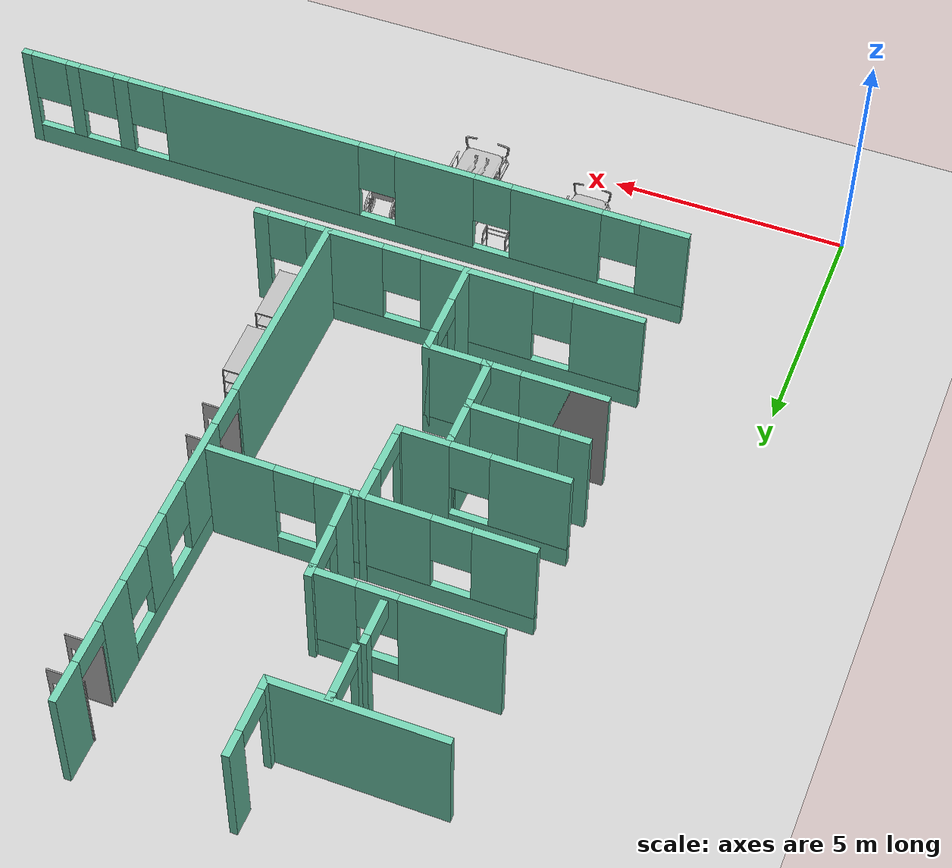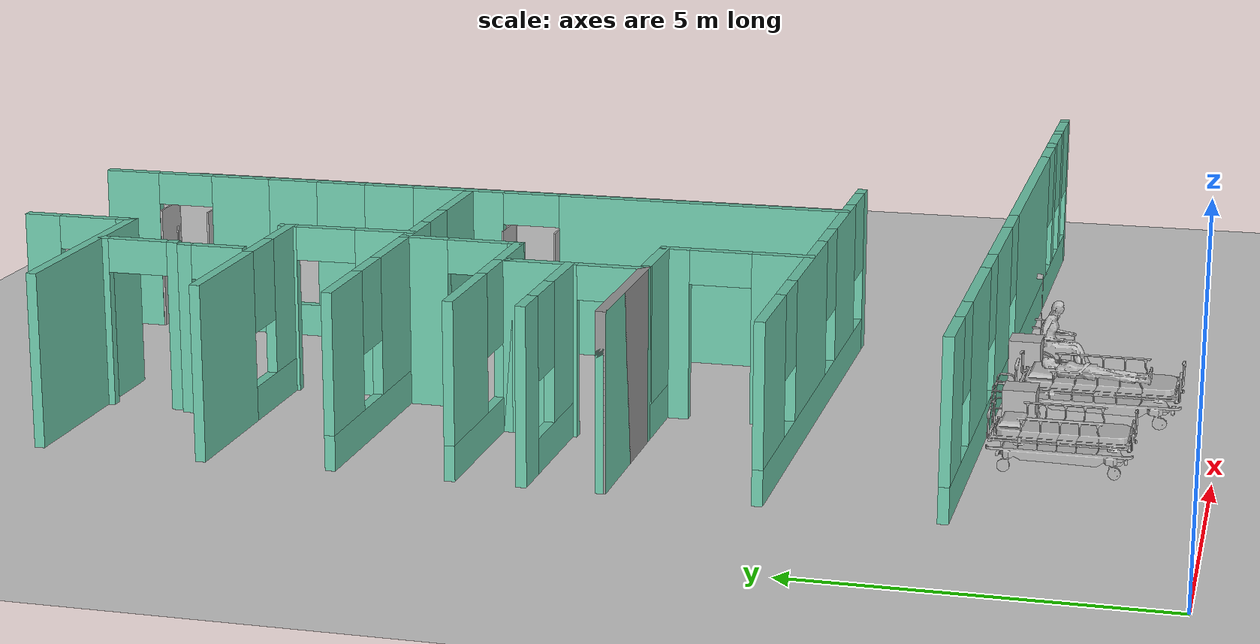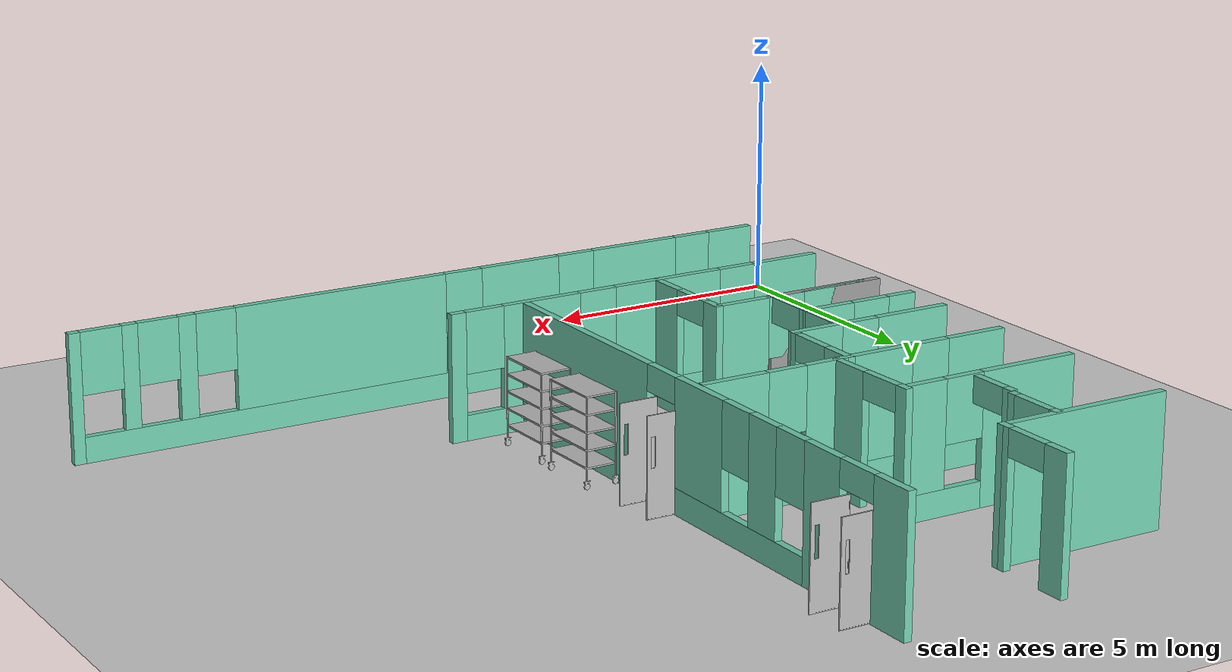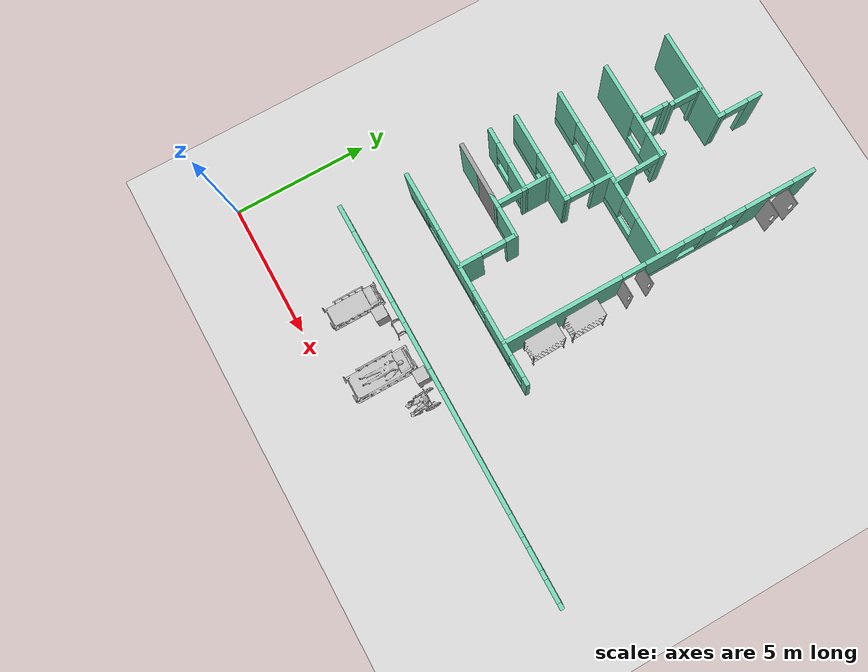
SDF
<sdf version="1.6">
 <world name="default">
  <model name="ground_plane">
   <static>1</static>
   <link name="link">
    <collision name="collision">
     <geometry><plane><normal>0 0 1</normal><size>100 100</size></plane></geometry>
     <surface><friction><ode><mu>100</mu><mu2>50</mu2></ode></friction></surface>
    </collision>
    <visual name="visual">
     <cast_shadows>0</cast_shadows>
     <geometry><plane><normal>0 0 1</normal><size>100 100</size></plane></geometry>
     <material>
      <script><uri>file://media/materials/scripts/gazebo.material</uri><name>Gazebo/Grey</name></script>
     </material>
    </visual>
   </link>
  </model>
  <model name="Hospital_empty">
   <pose>0.7078 0.61575 0 0 -0 0</pose>
   <link name="Wall_100">
    <pose>3.70852 12.8706 0 0 -0 0</pose>
    <visual name="Wall_100_Visual_0">
     <pose>-0.873017 0 1.25 0 -0 0</pose>
     <geometry><box><size>2.00397 0.15 2.5</size></box></geometry>
     <material>
      <script><uri>file://media/materials/scripts/gazebo.material</uri><name>Gazebo/Grey</name></script>
      <ambient>0.435294 0.796078 0.67451 1</ambient>
     </material>
    </visual>
    <collision name="Wall_100_Collision_0">
     <geometry><box><size>2.00397 0.15 2.5</size></box></geometry>
     <pose>-0.873017 0 1.25 0 -0 0</pose>
    </collision>
    <visual name="Wall_100_Visual_1">
     <pose>1.00198 0 0.25 0 -0 0</pose>
     <geometry><box><size>1.74603 0.15 0.5</size></box></geometry>
     <material>
      <script><uri>file://media/materials/scripts/gazebo.material</uri><name>Gazebo/Grey</name></script>
      <ambient>0.435294 0.796078 0.67451 1</ambient>
     </material>
    </visual>
    <collision name="Wall_100_Collision_1">
     <geometry><box><size>1.74603 0.15 0.5</size></box></geometry>
     <pose>1.00198 0 0.25 0 -0 0</pose>
    </collision>
    <visual name="Wall_100_Visual_2">
     <pose>1.40198 0 1.5 0 -0 0</pose>
     <geometry><box><size>0.946034 0.15 2</size></box></geometry>
     <material>
      <script><uri>file://media/materials/scripts/gazebo.material</uri><name>Gazebo/Grey</name></script>
      <ambient>0.435294 0.796078 0.67451 1</ambient>
     </material>
    </visual>
    <collision name="Wall_100_Collision_2">
     <geometry><box><size>0.946034 0.15 2</size></box></geometry>
     <pose>1.40198 0 1.5 0 -0 0</pose>
    </collision>
    <visual name="Wall_100_Visual_3">
     <pose>0.528966 0 1.9 0 -0 0</pose>
     <geometry><box><size>0.8 0.15 1.2</size></box></geometry>
     <material>
      <script><uri>file://media/materials/scripts/gazebo.material</uri><name>Gazebo/Grey</name></script>
      <ambient>0.435294 0.796078 0.67451 1</ambient>
     </material>
    </visual>
    <collision name="Wall_100_Collision_3">
     <geometry><box><size>0.8 0.15 1.2</size></box></geometry>
     <pose>0.528966 0 1.9 0 -0 0</pose>
    </collision>
   </link>
   <link name="Wall_101">
    <pose>5.53676 11.9973 0 0 0 -1.5414</pose>
    <visual name="Wall_101_Visual_0">
     <pose>-0.894743 0 1.25 0 -0 0</pose>
     <geometry><box><size>0.281917 0.15 2.5</size></box></geometry>
     <material>
      <script><uri>file://media/materials/scripts/gazebo.material</uri><name>Gazebo/Grey</name></script>
      <ambient>0.435294 0.796078 0.67451 1</ambient>
     </material>
    </visual>
    <collision name="Wall_101_Collision_0">
     <geometry><box><size>0.281917 0.15 2.5</size></box></geometry>
     <pose>-0.894743 0 1.25 0 -0 0</pose>
    </collision>
    <visual name="Wall_101_Visual_1">
     <pose>0.590959 0 1.25 0 -0 0</pose>
     <geometry><box><size>0.889485 0.15 2.5</size></box></geometry>
     <material>
      <script><uri>file://media/materials/scripts/gazebo.material</uri><name>Gazebo/Grey</name></script>
      <ambient>0.435294 0.796078 0.67451 1</ambient>
     </material>
    </visual>
    <collision name="Wall_101_Collision_1">
     <geometry><box><size>0.889485 0.15 2.5</size></box></geometry>
     <pose>0.590959 0 1.25 0 -0 0</pose>
    </collision>
    <visual name="Wall_101_Visual_2">
     <pose>-0.303784 0 2.25 0 -0 0</pose>
     <geometry><box><size>0.9 0.15 0.5</size></box></geometry>
     <material>
      <script><uri>file://media/materials/scripts/gazebo.material</uri><name>Gazebo/Grey</name></script>
      <ambient>0.435294 0.796078 0.67451 1</ambient>
     </material>
    </visual>
    <collision name="Wall_101_Collision_2">
     <geometry><box><size>0.9 0.15 0.5</size></box></geometry>
     <pose>-0.303784 0 2.25 0 -0 0</pose>
    </collision>
   </link>
   <link name="Wall_103">
    <pose>5.15177 11.0095 0 0 -0 3.14159</pose>
    <visual name="Wall_103_Visual_0">
     <pose>-2.56982 0 1.25 0 -0 0</pose>
     <geometry><box><size>1.36037 0.15 2.5</size></box></geometry>
     <material>
      <script><uri>file://media/materials/scripts/gazebo.material</uri><name>Gazebo/Grey</name></script>
      <ambient>0.435294 0.796078 0.67451 1</ambient>
     </material>
    </visual>
    <collision name="Wall_103_Collision_0">
     <geometry><box><size>1.36037 0.15 2.5</size></box></geometry>
     <pose>-2.56982 0 1.25 0 -0 0</pose>
    </collision>
    <visual name="Wall_103_Visual_1">
     <pose>0.680183 0 0.25 0 -0 0</pose>
     <geometry><box><size>5.13964 0.15 0.5</size></box></geometry>
     <material>
      <script><uri>file://media/materials/scripts/gazebo.material</uri><name>Gazebo/Grey</name></script>
      <ambient>0.435294 0.796078 0.67451 1</ambient>
     </material>
    </visual>
    <collision name="Wall_103_Collision_1">
     <geometry><box><size>5.13964 0.15 0.5</size></box></geometry>
     <pose>0.680183 0 0.25 0 -0 0</pose>
    </collision>
    <visual name="Wall_103_Visual_2">
     <pose>0.054099 0 1.5 0 -0 0</pose>
     <geometry><box><size>2.28747 0.15 2</size></box></geometry>
     <material>
      <script><uri>file://media/materials/scripts/gazebo.material</uri><name>Gazebo/Grey</name></script>
      <ambient>0.435294 0.796078 0.67451 1</ambient>
     </material>
    </visual>
    <collision name="Wall_103_Collision_2">
     <geometry><box><size>2.28747 0.15 2</size></box></geometry>
     <pose>0.054099 0 1.5 0 -0 0</pose>
    </collision>
    <visual name="Wall_103_Visual_3">
     <pose>2.62392 0 1.5 0 -0 0</pose>
     <geometry><box><size>1.25217 0.15 2</size></box></geometry>
     <material>
      <script><uri>file://media/materials/scripts/gazebo.material</uri><name>Gazebo/Grey</name></script>
      <ambient>0.435294 0.796078 0.67451 1</ambient>
     </material>
    </visual>
    <collision name="Wall_103_Collision_3">
     <geometry><box><size>1.25217 0.15 2</size></box></geometry>
     <pose>2.62392 0 1.5 0 -0 0</pose>
    </collision>
    <visual name="Wall_103_Visual_4">
     <pose>-1.48964 0 1.9 0 -0 0</pose>
     <geometry><box><size>0.8 0.15 1.2</size></box></geometry>
     <material>
      <script><uri>file://media/materials/scripts/gazebo.material</uri><name>Gazebo/Grey</name></script>
      <ambient>0.435294 0.796078 0.67451 1</ambient>
     </material>
    </visual>
    <collision name="Wall_103_Collision_4">
     <geometry><box><size>0.8 0.15 1.2</size></box></geometry>
     <pose>-1.48964 0 1.9 0 -0 0</pose>
    </collision>
    <visual name="Wall_103_Visual_5">
     <pose>1.59783 0 1.9 0 -0 0</pose>
     <geometry><box><size>0.8 0.15 1.2</size></box></geometry>
     <material>
      <script><uri>file://media/materials/scripts/gazebo.material</uri><name>Gazebo/Grey</name></script>
      <ambient>0.435294 0.796078 0.67451 1</ambient>
     </material>
    </visual>
    <collision name="Wall_103_Collision_5">
     <geometry><box><size>0.8 0.15 1.2</size></box></geometry>
     <pose>1.59783 0 1.9 0 -0 0</pose>
    </collision>
   </link>
   <link name="Wall_105">
    <pose>5.291 10.1575 0 0 0 -1.58367</pose>
    <visual name="Wall_105_Visual_0">
     <pose>-0.562111 0 1.25 0 -0 0</pose>
     <geometry><box><size>0.734515 0.15 2.5</size></box></geometry>
     <material>
      <script><uri>file://media/materials/scripts/gazebo.material</uri><name>Gazebo/Grey</name></script>
      <ambient>0.435294 0.796078 0.67451 1</ambient>
     </material>
    </visual>
    <collision name="Wall_105_Collision_0">
     <geometry><box><size>0.734515 0.15 2.5</size></box></geometry>
     <pose>-0.562111 0 1.25 0 -0 0</pose>
    </collision>
    <visual name="Wall_105_Visual_1">
     <pose>0.817258 0 1.25 0 -0 0</pose>
     <geometry><box><size>0.224223 0.15 2.5</size></box></geometry>
     <material>
      <script><uri>file://media/materials/scripts/gazebo.material</uri><name>Gazebo/Grey</name></script>
      <ambient>0.435294 0.796078 0.67451 1</ambient>
     </material>
    </visual>
    <collision name="Wall_105_Collision_1">
     <geometry><box><size>0.224223 0.15 2.5</size></box></geometry>
     <pose>0.817258 0 1.25 0 -0 0</pose>
    </collision>
    <visual name="Wall_105_Visual_2">
     <pose>0.255146 0 2.25 0 -0 0</pose>
     <geometry><box><size>0.9 0.15 0.5</size></box></geometry>
     <material>
      <script><uri>file://media/materials/scripts/gazebo.material</uri><name>Gazebo/Grey</name></script>
      <ambient>0.435294 0.796078 0.67451 1</ambient>
     </material>
    </visual>
    <collision name="Wall_105_Collision_2">
     <geometry><box><size>0.9 0.15 0.5</size></box></geometry>
     <pose>0.255146 0 2.25 0 -0 0</pose>
    </collision>
   </link>
   <link name="Wall_106">
    <pose>3.616 9.30314 0 0 -0 3.1415</pose>
    <visual name="Wall_106_Visual_0">
     <pose>-1.18986 0 1.25 0 -0 0</pose>
     <geometry><box><size>1.09829 0.15 2.5</size></box></geometry>
     <material>
      <script><uri>file://media/materials/scripts/gazebo.material</uri><name>Gazebo/Grey</name></script>
      <ambient>0.435294 0.796078 0.67451 1</ambient>
     </material>
    </visual>
    <collision name="Wall_106_Collision_0">
     <geometry><box><size>1.09829 0.15 2.5</size></box></geometry>
     <pose>-1.18986 0 1.25 0 -0 0</pose>
    </collision>
    <visual name="Wall_106_Visual_1">
     <pose>0.549144 0 0.25 0 -0 0</pose>
     <geometry><box><size>2.37971 0.15 0.5</size></box></geometry>
     <material>
      <script><uri>file://media/materials/scripts/gazebo.material</uri><name>Gazebo/Grey</name></script>
      <ambient>0.435294 0.796078 0.67451 1</ambient>
     </material>
    </visual>
    <collision name="Wall_106_Collision_1">
     <geometry><box><size>2.37971 0.15 0.5</size></box></geometry>
     <pose>0.549144 0 0.25 0 -0 0</pose>
    </collision>
    <visual name="Wall_106_Visual_2">
     <pose>0.949144 0 1.5 0 -0 0</pose>
     <geometry><box><size>1.57971 0.15 2</size></box></geometry>
     <material>
      <script><uri>file://media/materials/scripts/gazebo.material</uri><name>Gazebo/Grey</name></script>
      <ambient>0.435294 0.796078 0.67451 1</ambient>
     </material>
    </visual>
    <collision name="Wall_106_Collision_2">
     <geometry><box><size>1.57971 0.15 2</size></box></geometry>
     <pose>0.949144 0 1.5 0 -0 0</pose>
    </collision>
    <visual name="Wall_106_Visual_3">
     <pose>-0.240712 0 1.9 0 -0 0</pose>
     <geometry><box><size>0.8 0.15 1.2</size></box></geometry>
     <material>
      <script><uri>file://media/materials/scripts/gazebo.material</uri><name>Gazebo/Grey</name></script>
      <ambient>0.435294 0.796078 0.67451 1</ambient>
     </material>
    </visual>
    <collision name="Wall_106_Collision_3">
     <geometry><box><size>0.8 0.15 1.2</size></box></geometry>
     <pose>-0.240712 0 1.9 0 -0 0</pose>
    </collision>
   </link>
   <link name="Wall_108">
    <pose>3.12156 8.29555 0 0 0 -0.004715</pose>
    <visual name="Wall_108_Visual_0">
     <pose>-0.954583 0 1.25 0 -0 0</pose>
     <geometry><box><size>0.60173 0.15 2.5</size></box></geometry>
     <material>
      <script><uri>file://media/materials/scripts/gazebo.material</uri><name>Gazebo/Grey</name></script>
      <ambient>0.435294 0.796078 0.67451 1</ambient>
     </material>
    </visual>
    <collision name="Wall_108_Collision_0">
     <geometry><box><size>0.60173 0.15 2.5</size></box></geometry>
     <pose>-0.954583 0 1.25 0 -0 0</pose>
    </collision>
    <visual name="Wall_108_Visual_1">
     <pose>0.300865 0 0.25 0 -0 0</pose>
     <geometry><box><size>1.90917 0.15 0.5</size></box></geometry>
     <material>
      <script><uri>file://media/materials/scripts/gazebo.material</uri><name>Gazebo/Grey</name></script>
      <ambient>0.435294 0.796078 0.67451 1</ambient>
     </material>
    </visual>
    <collision name="Wall_108_Collision_1">
     <geometry><box><size>1.90917 0.15 0.5</size></box></geometry>
     <pose>0.300865 0 0.25 0 -0 0</pose>
    </collision>
    <visual name="Wall_108_Visual_2">
     <pose>0.700865 0 1.5 0 -0 0</pose>
     <geometry><box><size>1.10916 0.15 2</size></box></geometry>
     <material>
      <script><uri>file://media/materials/scripts/gazebo.material</uri><name>Gazebo/Grey</name></script>
      <ambient>0.435294 0.796078 0.67451 1</ambient>
     </material>
    </visual>
    <collision name="Wall_108_Collision_2">
     <geometry><box><size>1.10916 0.15 2</size></box></geometry>
     <pose>0.700865 0 1.5 0 -0 0</pose>
    </collision>
    <visual name="Wall_108_Visual_3">
     <pose>-0.253718 0 1.9 0 -0 0</pose>
     <geometry><box><size>0.8 0.15 1.2</size></box></geometry>
     <material>
      <script><uri>file://media/materials/scripts/gazebo.material</uri><name>Gazebo/Grey</name></script>
      <ambient>0.435294 0.796078 0.67451 1</ambient>
     </material>
    </visual>
    <collision name="Wall_108_Collision_3">
     <geometry><box><size>0.8 0.15 1.2</size></box></geometry>
     <pose>-0.253718 0 1.9 0 -0 0</pose>
    </collision>
   </link>
   <link name="Wall_109">
    <pose>4.302 7.75099 0 0 0 -1.5708</pose>
    <visual name="Wall_109_Visual_0">
     <pose>-0.512428 0 1.25 0 -0 0</pose>
     <geometry><box><size>0.203406 0.15 2.5</size></box></geometry>
     <material>
      <script><uri>file://media/materials/scripts/gazebo.material</uri><name>Gazebo/Grey</name></script>
      <ambient>0.435294 0.796078 0.67451 1</ambient>
     </material>
    </visual>
    <collision name="Wall_109_Collision_0">
     <geometry><box><size>0.203406 0.15 2.5</size></box></geometry>
     <pose>-0.512428 0 1.25 0 -0 0</pose>
    </collision>
    <visual name="Wall_109_Visual_1">
     <pose>0.551703 0 1.25 0 -0 0</pose>
     <geometry><box><size>0.124856 0.15 2.5</size></box></geometry>
     <material>
      <script><uri>file://media/materials/scripts/gazebo.material</uri><name>Gazebo/Grey</name></script>
      <ambient>0.435294 0.796078 0.67451 1</ambient>
     </material>
    </visual>
    <collision name="Wall_109_Collision_1">
     <geometry><box><size>0.124856 0.15 2.5</size></box></geometry>
     <pose>0.551703 0 1.25 0 -0 0</pose>
    </collision>
    <visual name="Wall_109_Visual_2">
     <pose>0.039275 0 2.25 0 -0 0</pose>
     <geometry><box><size>0.9 0.15 0.5</size></box></geometry>
     <material>
      <script><uri>file://media/materials/scripts/gazebo.material</uri><name>Gazebo/Grey</name></script>
      <ambient>0.435294 0.796078 0.67451 1</ambient>
     </material>
    </visual>
    <collision name="Wall_109_Collision_2">
     <geometry><box><size>0.9 0.15 0.5</size></box></geometry>
     <pose>0.039275 0 2.25 0 -0 0</pose>
    </collision>
   </link>
   <link name="Wall_110">
    <collision name="Wall_110_Collision">
     <geometry><box><size>2.5 0.15 2.5</size></box></geometry>
     <pose>0 0 1.25 0 -0 0</pose>
    </collision>
    <visual name="Wall_110_Visual">
     <pose>0 0 1.25 0 -0 0</pose>
     <geometry><box><size>2.5 0.15 2.5</size></box></geometry>
     <material>
      <script><uri>file://media/materials/scripts/gazebo.material</uri><name>Gazebo/Grey</name></script>
      <ambient>1 1 1 1</ambient>
     </material>
    </visual>
    <pose>3.127 7.21199 0 0 -0 3.14159</pose>
   </link>
   <link name="Wall_111">
    <pose>3.752 7.21199 0 0 -0 0</pose>
    <visual name="Wall_111_Visual_0">
     <pose>-0.993085 0 1.25 0 -0 0</pose>
     <geometry><box><size>1.76383 0.15 2.5</size></box></geometry>
     <material>
      <script><uri>file://media/materials/scripts/gazebo.material</uri><name>Gazebo/Grey</name></script>
      <ambient>0.435294 0.796078 0.67451 1</ambient>
     </material>
    </visual>
    <collision name="Wall_111_Collision_0">
     <geometry><box><size>1.76383 0.15 2.5</size></box></geometry>
     <pose>-0.993085 0 1.25 0 -0 0</pose>
    </collision>
    <visual name="Wall_111_Visual_1">
     <pose>0.881915 0 0.25 0 -0 0</pose>
     <geometry><box><size>1.98617 0.15 0.5</size></box></geometry>
     <material>
      <script><uri>file://media/materials/scripts/gazebo.material</uri><name>Gazebo/Grey</name></script>
      <ambient>0.435294 0.796078 0.67451 1</ambient>
     </material>
    </visual>
    <collision name="Wall_111_Collision_1">
     <geometry><box><size>1.98617 0.15 0.5</size></box></geometry>
     <pose>0.881915 0 0.25 0 -0 0</pose>
    </collision>
    <visual name="Wall_111_Visual_2">
     <pose>1.28191 0 1.5 0 -0 0</pose>
     <geometry><box><size>1.18617 0.15 2</size></box></geometry>
     <material>
      <script><uri>file://media/materials/scripts/gazebo.material</uri><name>Gazebo/Grey</name></script>
      <ambient>0.435294 0.796078 0.67451 1</ambient>
     </material>
    </visual>
    <collision name="Wall_111_Collision_2">
     <geometry><box><size>1.18617 0.15 2</size></box></geometry>
     <pose>1.28191 0 1.5 0 -0 0</pose>
    </collision>
    <visual name="Wall_111_Visual_3">
     <pose>0.28883 0 1.9 0 -0 0</pose>
     <geometry><box><size>0.8 0.15 1.2</size></box></geometry>
     <material>
      <script><uri>file://media/materials/scripts/gazebo.material</uri><name>Gazebo/Grey</name></script>
      <ambient>0.435294 0.796078 0.67451 1</ambient>
     </material>
    </visual>
    <collision name="Wall_111_Collision_3">
     <geometry><box><size>0.8 0.15 1.2</size></box></geometry>
     <pose>0.28883 0 1.9 0 -0 0</pose>
    </collision>
   </link>
   <link name="Wall_112">
    <pose>5.552 6.16199 0 0 0 -1.5708</pose>
    <visual name="Wall_112_Visual_0">
     <pose>-0.900897 0 1.25 0 -0 0</pose>
     <geometry><box><size>0.448206 0.15 2.5</size></box></geometry>
     <material>
      <script><uri>file://media/materials/scripts/gazebo.material</uri><name>Gazebo/Grey</name></script>
      <ambient>0.435294 0.796078 0.67451 1</ambient>
     </material>
    </visual>
    <collision name="Wall_112_Collision_0">
     <geometry><box><size>0.448206 0.15 2.5</size></box></geometry>
     <pose>-0.900897 0 1.25 0 -0 0</pose>
    </collision>
    <visual name="Wall_112_Visual_1">
     <pose>0.674103 0 1.25 0 -0 0</pose>
     <geometry><box><size>0.901794 0.15 2.5</size></box></geometry>
     <material>
      <script><uri>file://media/materials/scripts/gazebo.material</uri><name>Gazebo/Grey</name></script>
      <ambient>0.435294 0.796078 0.67451 1</ambient>
     </material>
    </visual>
    <collision name="Wall_112_Collision_1">
     <geometry><box><size>0.901794 0.15 2.5</size></box></geometry>
     <pose>0.674103 0 1.25 0 -0 0</pose>
    </collision>
    <visual name="Wall_112_Visual_2">
     <pose>-0.226794 0 2.25 0 -0 0</pose>
     <geometry><box><size>0.9 0.15 0.5</size></box></geometry>
     <material>
      <script><uri>file://media/materials/scripts/gazebo.material</uri><name>Gazebo/Grey</name></script>
      <ambient>0.435294 0.796078 0.67451 1</ambient>
     </material>
    </visual>
    <collision name="Wall_112_Collision_2">
     <geometry><box><size>0.9 0.15 0.5</size></box></geometry>
     <pose>-0.226794 0 2.25 0 -0 0</pose>
    </collision>
   </link>
   <link name="Wall_116">
    <pose>4.302 8.72599 0 0 -0 1.5708</pose>
    <visual name="Wall_116_Visual_0">
     <pose>0 0 1.25 0 -0 0</pose>
     <geometry><box><size>1.02174 0.15 2.5</size></box></geometry>
     <material>
      <script><uri>file://media/materials/scripts/gazebo.material</uri><name>Gazebo/Grey</name></script>
      <ambient>0.435294 0.796078 0.67451 1</ambient>
     </material>
    </visual>
    <collision name="Wall_116_Collision_0">
     <geometry><box><size>1.02174 0.15 2.5</size></box></geometry>
     <pose>0 0 1.25 0 -0 0</pose>
    </collision>
    <visual name="Wall_116_Visual_1">
     <pose>0.442682 0 1.25 0 -0 0</pose>
     <geometry><box><size>0.136373 0.15 2.5</size></box></geometry>
     <material>
      <script><uri>file://media/materials/scripts/gazebo.material</uri><name>Gazebo/Grey</name></script>
      <ambient>0.435294 0.796078 0.67451 1</ambient>
     </material>
    </visual>
    <collision name="Wall_116_Collision_1">
     <geometry><box><size>0.136373 0.15 2.5</size></box></geometry>
     <pose>0.442682 0 1.25 0 -0 0</pose>
    </collision>
   </link>
   <link name="Wall_118">
    <pose>4.139 14.674 0 0 0 -1.5708</pose>
    <visual name="Wall_118_Visual_0">
     <pose>-0.532999 0 1.25 0 -0 0</pose>
     <geometry><box><size>0.184003 0.15 2.5</size></box></geometry>
     <material>
      <script><uri>file://media/materials/scripts/gazebo.material</uri><name>Gazebo/Grey</name></script>
      <ambient>0.435294 0.796078 0.67451 1</ambient>
     </material>
    </visual>
    <collision name="Wall_118_Collision_0">
     <geometry><box><size>0.184003 0.15 2.5</size></box></geometry>
     <pose>-0.532999 0 1.25 0 -0 0</pose>
    </collision>
    <visual name="Wall_118_Visual_1">
     <pose>0.542001 0 1.25 0 -0 0</pose>
     <geometry><box><size>0.165997 0.15 2.5</size></box></geometry>
     <material>
      <script><uri>file://media/materials/scripts/gazebo.material</uri><name>Gazebo/Grey</name></script>
      <ambient>0.435294 0.796078 0.67451 1</ambient>
     </material>
    </visual>
    <collision name="Wall_118_Collision_1">
     <geometry><box><size>0.165997 0.15 2.5</size></box></geometry>
     <pose>0.542001 0 1.25 0 -0 0</pose>
    </collision>
    <visual name="Wall_118_Visual_2">
     <pose>0.009003 0 2.25 0 -0 0</pose>
     <geometry><box><size>0.9 0.15 0.5</size></box></geometry>
     <material>
      <script><uri>file://media/materials/scripts/gazebo.material</uri><name>Gazebo/Grey</name></script>
      <ambient>0.435294 0.796078 0.67451 1</ambient>
     </material>
    </visual>
    <collision name="Wall_118_Collision_2">
     <geometry><box><size>0.9 0.15 0.5</size></box></geometry>
     <pose>0.009003 0 2.25 0 -0 0</pose>
    </collision>
   </link>
   <link name="Wall_57">
    <pose>5.98146 5.11063 0 0 0 -3.13852</pose>
    <visual name="Wall_57_Visual_0">
     <pose>-3.93743 0 1.25 0 -0 0</pose>
     <geometry><box><size>0.312272 0.15 2.5</size></box></geometry>
     <material>
      <script><uri>file://media/materials/scripts/gazebo.material</uri><name>Gazebo/Grey</name></script>
      <ambient>0.435294 0.796078 0.67451 1</ambient>
     </material>
    </visual>
    <collision name="Wall_57_Collision_0">
     <geometry><box><size>0.312272 0.15 2.5</size></box></geometry>
     <pose>-3.93743 0 1.25 0 -0 0</pose>
    </collision>
    <visual name="Wall_57_Visual_1">
     <pose>0.156136 0 0.25 0 -0 0</pose>
     <geometry><box><size>7.87486 0.15 0.5</size></box></geometry>
     <material>
      <script><uri>file://media/materials/scripts/gazebo.material</uri><name>Gazebo/Grey</name></script>
      <ambient>0.435294 0.796078 0.67451 1</ambient>
     </material>
    </visual>
    <collision name="Wall_57_Collision_1">
     <geometry><box><size>7.87486 0.15 0.5</size></box></geometry>
     <pose>0.156136 0 0.25 0 -0 0</pose>
    </collision>
    <visual name="Wall_57_Visual_2">
     <pose>-2.15589 0 1.5 0 -0 0</pose>
     <geometry><box><size>1.6508 0.15 2</size></box></geometry>
     <material>
      <script><uri>file://media/materials/scripts/gazebo.material</uri><name>Gazebo/Grey</name></script>
      <ambient>0.435294 0.796078 0.67451 1</ambient>
     </material>
    </visual>
    <collision name="Wall_57_Collision_2">
     <geometry><box><size>1.6508 0.15 2</size></box></geometry>
     <pose>-2.15589 0 1.5 0 -0 0</pose>
    </collision>
    <visual name="Wall_57_Visual_3">
     <pose>0.652319 0 1.5 0 -0 0</pose>
     <geometry><box><size>2.36562 0.15 2</size></box></geometry>
     <material>
      <script><uri>file://media/materials/scripts/gazebo.material</uri><name>Gazebo/Grey</name></script>
      <ambient>0.435294 0.796078 0.67451 1</ambient>
     </material>
    </visual>
    <collision name="Wall_57_Collision_3">
     <geometry><box><size>2.36562 0.15 2</size></box></geometry>
     <pose>0.652319 0 1.5 0 -0 0</pose>
    </collision>
    <visual name="Wall_57_Visual_4">
     <pose>3.36435 0 1.5 0 -0 0</pose>
     <geometry><box><size>1.45843 0.15 2</size></box></geometry>
     <material>
      <script><uri>file://media/materials/scripts/gazebo.material</uri><name>Gazebo/Grey</name></script>
      <ambient>0.435294 0.796078 0.67451 1</ambient>
     </material>
    </visual>
    <collision name="Wall_57_Collision_4">
     <geometry><box><size>1.45843 0.15 2</size></box></geometry>
     <pose>3.36435 0 1.5 0 -0 0</pose>
    </collision>
    <visual name="Wall_57_Visual_5">
     <pose>-3.38129 0 1.9 0 -0 0</pose>
     <geometry><box><size>0.8 0.15 1.2</size></box></geometry>
     <material>
      <script><uri>file://media/materials/scripts/gazebo.material</uri><name>Gazebo/Grey</name></script>
      <ambient>0.435294 0.796078 0.67451 1</ambient>
     </material>
    </visual>
    <collision name="Wall_57_Collision_5">
     <geometry><box><size>0.8 0.15 1.2</size></box></geometry>
     <pose>-3.38129 0 1.9 0 -0 0</pose>
    </collision>
    <visual name="Wall_57_Visual_6">
     <pose>-0.93049 0 1.9 0 -0 0</pose>
     <geometry><box><size>0.8 0.15 1.2</size></box></geometry>
     <material>
      <script><uri>file://media/materials/scripts/gazebo.material</uri><name>Gazebo/Grey</name></script>
      <ambient>0.435294 0.796078 0.67451 1</ambient>
     </material>
    </visual>
    <collision name="Wall_57_Collision_6">
     <geometry><box><size>0.8 0.15 1.2</size></box></geometry>
     <pose>-0.93049 0 1.9 0 -0 0</pose>
    </collision>
    <visual name="Wall_57_Visual_7">
     <pose>2.23513 0 1.9 0 -0 0</pose>
     <geometry><box><size>0.8 0.15 1.2</size></box></geometry>
     <material>
      <script><uri>file://media/materials/scripts/gazebo.material</uri><name>Gazebo/Grey</name></script>
      <ambient>0.435294 0.796078 0.67451 1</ambient>
     </material>
    </visual>
    <collision name="Wall_57_Collision_7">
     <geometry><box><size>0.8 0.15 1.2</size></box></geometry>
     <pose>2.23513 0 1.9 0 -0 0</pose>
    </collision>
   </link>
   <link name="Wall_61">
    <pose>8.49219 11.054 0 0 0 -1.5708</pose>
    <visual name="Wall_61_Visual_0">
     <pose>-5.56028 0 1.25 0 -0 0</pose>
     <geometry><box><size>0.879433 0.15 2.5</size></box></geometry>
     <material>
      <script><uri>file://media/materials/scripts/gazebo.material</uri><name>Gazebo/Grey</name></script>
      <ambient>0.435294 0.796078 0.67451 1</ambient>
     </material>
    </visual>
    <collision name="Wall_61_Collision_0">
     <geometry><box><size>0.879433 0.15 2.5</size></box></geometry>
     <pose>-5.56028 0 1.25 0 -0 0</pose>
    </collision>
    <visual name="Wall_61_Visual_1">
     <pose>-3.73925 0 1.25 0 -0 0</pose>
     <geometry><box><size>0.962634 0.15 2.5</size></box></geometry>
     <material>
      <script><uri>file://media/materials/scripts/gazebo.material</uri><name>Gazebo/Grey</name></script>
      <ambient>0.435294 0.796078 0.67451 1</ambient>
     </material>
    </visual>
    <collision name="Wall_61_Collision_1">
     <geometry><box><size>0.962634 0.15 2.5</size></box></geometry>
     <pose>-3.73925 0 1.25 0 -0 0</pose>
    </collision>
    <visual name="Wall_61_Visual_2">
     <pose>3.74705 0 1.25 0 -0 0</pose>
     <geometry><box><size>4.50591 0.15 2.5</size></box></geometry>
     <material>
      <script><uri>file://media/materials/scripts/gazebo.material</uri><name>Gazebo/Grey</name></script>
      <ambient>0.435294 0.796078 0.67451 1</ambient>
     </material>
    </visual>
    <collision name="Wall_61_Collision_2">
     <geometry><box><size>4.50591 0.15 2.5</size></box></geometry>
     <pose>3.74705 0 1.25 0 -0 0</pose>
    </collision>
    <visual name="Wall_61_Visual_3">
     <pose>-1.33192 0 0.25 0 -0 0</pose>
     <geometry><box><size>3.85202 0.15 0.5</size></box></geometry>
     <material>
      <script><uri>file://media/materials/scripts/gazebo.material</uri><name>Gazebo/Grey</name></script>
      <ambient>0.435294 0.796078 0.67451 1</ambient>
     </material>
    </visual>
    <collision name="Wall_61_Collision_3">
     <geometry><box><size>3.85202 0.15 0.5</size></box></geometry>
     <pose>-1.33192 0 0.25 0 -0 0</pose>
    </collision>
    <visual name="Wall_61_Visual_4">
     <pose>-2.06256 0 1.5 0 -0 0</pose>
     <geometry><box><size>0.79074 0.15 2</size></box></geometry>
     <material>
      <script><uri>file://media/materials/scripts/gazebo.material</uri><name>Gazebo/Grey</name></script>
      <ambient>0.435294 0.796078 0.67451 1</ambient>
     </material>
    </visual>
    <collision name="Wall_61_Collision_4">
     <geometry><box><size>0.79074 0.15 2</size></box></geometry>
     <pose>-2.06256 0 1.5 0 -0 0</pose>
    </collision>
    <visual name="Wall_61_Visual_5">
     <pose>-0.136551 0 1.5 0 -0 0</pose>
     <geometry><box><size>1.46128 0.15 2</size></box></geometry>
     <material>
      <script><uri>file://media/materials/scripts/gazebo.material</uri><name>Gazebo/Grey</name></script>
      <ambient>0.435294 0.796078 0.67451 1</ambient>
     </material>
    </visual>
    <collision name="Wall_61_Collision_5">
     <geometry><box><size>1.46128 0.15 2</size></box></geometry>
     <pose>-0.136551 0 1.5 0 -0 0</pose>
    </collision>
    <visual name="Wall_61_Visual_6">
     <pose>-2.85793 0 1.9 0 -0 0</pose>
     <geometry><box><size>0.8 0.15 1.2</size></box></geometry>
     <material>
      <script><uri>file://media/materials/scripts/gazebo.material</uri><name>Gazebo/Grey</name></script>
      <ambient>0.435294 0.796078 0.67451 1</ambient>
     </material>
    </visual>
    <collision name="Wall_61_Collision_6">
     <geometry><box><size>0.8 0.15 1.2</size></box></geometry>
     <pose>-2.85793 0 1.9 0 -0 0</pose>
    </collision>
    <visual name="Wall_61_Visual_7">
     <pose>-1.26719 0 1.9 0 -0 0</pose>
     <geometry><box><size>0.8 0.15 1.2</size></box></geometry>
     <material>
      <script><uri>file://media/materials/scripts/gazebo.material</uri><name>Gazebo/Grey</name></script>
      <ambient>0.435294 0.796078 0.67451 1</ambient>
     </material>
    </visual>
    <collision name="Wall_61_Collision_7">
     <geometry><box><size>0.8 0.15 1.2</size></box></geometry>
     <pose>-1.26719 0 1.9 0 -0 0</pose>
    </collision>
    <visual name="Wall_61_Visual_8">
     <pose>-4.67057 0 2.25 0 -0 0</pose>
     <geometry><box><size>0.9 0.15 0.5</size></box></geometry>
     <material>
      <script><uri>file://media/materials/scripts/gazebo.material</uri><name>Gazebo/Grey</name></script>
      <ambient>0.435294 0.796078 0.67451 1</ambient>
     </material>
    </visual>
    <collision name="Wall_61_Collision_8">
     <geometry><box><size>0.9 0.15 0.5</size></box></geometry>
     <pose>-4.67057 0 2.25 0 -0 0</pose>
    </collision>
    <visual name="Wall_61_Visual_9">
     <pose>1.04409 0 2.25 0 -0 0</pose>
     <geometry><box><size>0.9 0.15 0.5</size></box></geometry>
     <material>
      <script><uri>file://media/materials/scripts/gazebo.material</uri><name>Gazebo/Grey</name></script>
      <ambient>0.435294 0.796078 0.67451 1</ambient>
     </material>
    </visual>
    <collision name="Wall_61_Collision_9">
     <geometry><box><size>0.9 0.15 0.5</size></box></geometry>
     <pose>1.04409 0 2.25 0 -0 0</pose>
    </collision>
   </link>
   <link name="Wall_69">
    <pose>9.1621 2.64295 0 0 -0 3.14159</pose>
    <visual name="Wall_69_Visual_0">
     <pose>-7.26373 0 1.25 0 -0 0</pose>
     <geometry><box><size>0.222543 0.15 2.5</size></box></geometry>
     <material>
      <script><uri>file://media/materials/scripts/gazebo.material</uri><name>Gazebo/Grey</name></script>
      <ambient>0.435294 0.796078 0.67451 1</ambient>
     </material>
    </visual>
    <collision name="Wall_69_Collision_0">
     <geometry><box><size>0.222543 0.15 2.5</size></box></geometry>
     <pose>-7.26373 0 1.25 0 -0 0</pose>
    </collision>
    <visual name="Wall_69_Visual_1">
     <pose>0.111272 0 0.25 0 -0 0</pose>
     <geometry><box><size>14.5275 0.15 0.5</size></box></geometry>
     <material>
      <script><uri>file://media/materials/scripts/gazebo.material</uri><name>Gazebo/Grey</name></script>
      <ambient>0.435294 0.796078 0.67451 1</ambient>
     </material>
    </visual>
    <collision name="Wall_69_Collision_1">
     <geometry><box><size>14.5275 0.15 0.5</size></box></geometry>
     <pose>0.111272 0 0.25 0 -0 0</pose>
    </collision>
    <visual name="Wall_69_Visual_2">
     <pose>-6.20014 0 1.5 0 -0 0</pose>
     <geometry><box><size>0.304628 0.15 2</size></box></geometry>
     <material>
      <script><uri>file://media/materials/scripts/gazebo.material</uri><name>Gazebo/Grey</name></script>
      <ambient>0.435294 0.796078 0.67451 1</ambient>
     </material>
    </visual>
    <collision name="Wall_69_Collision_2">
     <geometry><box><size>0.304628 0.15 2</size></box></geometry>
     <pose>-6.20014 0 1.5 0 -0 0</pose>
    </collision>
    <visual name="Wall_69_Visual_3">
     <pose>-5.07579 0 1.5 0 -0 0</pose>
     <geometry><box><size>0.344078 0.15 2</size></box></geometry>
     <material>
      <script><uri>file://media/materials/scripts/gazebo.material</uri><name>Gazebo/Grey</name></script>
      <ambient>0.435294 0.796078 0.67451 1</ambient>
     </material>
    </visual>
    <collision name="Wall_69_Collision_3">
     <geometry><box><size>0.344078 0.15 2</size></box></geometry>
     <pose>-5.07579 0 1.5 0 -0 0</pose>
    </collision>
    <visual name="Wall_69_Visual_4">
     <pose>-1.89999 0 1.5 0 -0 0</pose>
     <geometry><box><size>4.40753 0.15 2</size></box></geometry>
     <material>
      <script><uri>file://media/materials/scripts/gazebo.material</uri><name>Gazebo/Grey</name></script>
      <ambient>0.435294 0.796078 0.67451 1</ambient>
     </material>
    </visual>
    <collision name="Wall_69_Collision_4">
     <geometry><box><size>4.40753 0.15 2</size></box></geometry>
     <pose>-1.89999 0 1.5 0 -0 0</pose>
    </collision>
    <visual name="Wall_69_Visual_5">
     <pose>1.96621 0 1.5 0 -0 0</pose>
     <geometry><box><size>1.72486 0.15 2</size></box></geometry>
     <material>
      <script><uri>file://media/materials/scripts/gazebo.material</uri><name>Gazebo/Grey</name></script>
      <ambient>0.435294 0.796078 0.67451 1</ambient>
     </material>
    </visual>
    <collision name="Wall_69_Collision_5">
     <geometry><box><size>1.72486 0.15 2</size></box></geometry>
     <pose>1.96621 0 1.5 0 -0 0</pose>
    </collision>
    <visual name="Wall_69_Visual_6">
     <pose>4.5897 0 1.5 0 -0 0</pose>
     <geometry><box><size>1.92212 0.15 2</size></box></geometry>
     <material>
      <script><uri>file://media/materials/scripts/gazebo.material</uri><name>Gazebo/Grey</name></script>
      <ambient>0.435294 0.796078 0.67451 1</ambient>
     </material>
    </visual>
    <collision name="Wall_69_Collision_6">
     <geometry><box><size>1.92212 0.15 2</size></box></geometry>
     <pose>4.5897 0 1.5 0 -0 0</pose>
    </collision>
    <visual name="Wall_69_Visual_7">
     <pose>6.86288 0 1.5 0 -0 0</pose>
     <geometry><box><size>1.02424 0.15 2</size></box></geometry>
     <material>
      <script><uri>file://media/materials/scripts/gazebo.material</uri><name>Gazebo/Grey</name></script>
      <ambient>0.435294 0.796078 0.67451 1</ambient>
     </material>
    </visual>
    <collision name="Wall_69_Collision_7">
     <geometry><box><size>1.02424 0.15 2</size></box></geometry>
     <pose>6.86288 0 1.5 0 -0 0</pose>
    </collision>
    <visual name="Wall_69_Visual_8">
     <pose>-6.75246 0 1.9 0 -0 0</pose>
     <geometry><box><size>0.8 0.15 1.2</size></box></geometry>
     <material>
      <script><uri>file://media/materials/scripts/gazebo.material</uri><name>Gazebo/Grey</name></script>
      <ambient>0.435294 0.796078 0.67451 1</ambient>
     </material>
    </visual>
    <collision name="Wall_69_Collision_8">
     <geometry><box><size>0.8 0.15 1.2</size></box></geometry>
     <pose>-6.75246 0 1.9 0 -0 0</pose>
    </collision>
    <visual name="Wall_69_Visual_9">
     <pose>-5.64783 0 1.9 0 -0 0</pose>
     <geometry><box><size>0.8 0.15 1.2</size></box></geometry>
     <material>
      <script><uri>file://media/materials/scripts/gazebo.material</uri><name>Gazebo/Grey</name></script>
      <ambient>0.435294 0.796078 0.67451 1</ambient>
     </material>
    </visual>
    <collision name="Wall_69_Collision_9">
     <geometry><box><size>0.8 0.15 1.2</size></box></geometry>
     <pose>-5.64783 0 1.9 0 -0 0</pose>
    </collision>
    <visual name="Wall_69_Visual_10">
     <pose>-4.50375 0 1.9 0 -0 0</pose>
     <geometry><box><size>0.8 0.15 1.2</size></box></geometry>
     <material>
      <script><uri>file://media/materials/scripts/gazebo.material</uri><name>Gazebo/Grey</name></script>
      <ambient>0.435294 0.796078 0.67451 1</ambient>
     </material>
    </visual>
    <collision name="Wall_69_Collision_10">
     <geometry><box><size>0.8 0.15 1.2</size></box></geometry>
     <pose>-4.50375 0 1.9 0 -0 0</pose>
    </collision>
    <visual name="Wall_69_Visual_11">
     <pose>0.703777 0 1.9 0 -0 0</pose>
     <geometry><box><size>0.8 0.15 1.2</size></box></geometry>
     <material>
      <script><uri>file://media/materials/scripts/gazebo.material</uri><name>Gazebo/Grey</name></script>
      <ambient>0.435294 0.796078 0.67451 1</ambient>
     </material>
    </visual>
    <collision name="Wall_69_Collision_11">
     <geometry><box><size>0.8 0.15 1.2</size></box></geometry>
     <pose>0.703777 0 1.9 0 -0 0</pose>
    </collision>
    <visual name="Wall_69_Visual_12">
     <pose>3.22864 0 1.9 0 -0 0</pose>
     <geometry><box><size>0.8 0.15 1.2</size></box></geometry>
     <material>
      <script><uri>file://media/materials/scripts/gazebo.material</uri><name>Gazebo/Grey</name></script>
      <ambient>0.435294 0.796078 0.67451 1</ambient>
     </material>
    </visual>
    <collision name="Wall_69_Collision_12">
     <geometry><box><size>0.8 0.15 1.2</size></box></geometry>
     <pose>3.22864 0 1.9 0 -0 0</pose>
    </collision>
    <visual name="Wall_69_Visual_13">
     <pose>5.95076 0 1.9 0 -0 0</pose>
     <geometry><box><size>0.8 0.15 1.2</size></box></geometry>
     <material>
      <script><uri>file://media/materials/scripts/gazebo.material</uri><name>Gazebo/Grey</name></script>
      <ambient>0.435294 0.796078 0.67451 1</ambient>
     </material>
    </visual>
    <collision name="Wall_69_Collision_13">
     <geometry><box><size>0.8 0.15 1.2</size></box></geometry>
     <pose>5.95076 0 1.9 0 -0 0</pose>
    </collision>
   </link>
   <link name="Wall_94">
    <pose>5.302 16.088 0 0 0 -1.5708</pose>
    <visual name="Wall_94_Visual_0">
     <pose>-0.598791 0 1.25 0 -0 0</pose>
     <geometry><box><size>0.552419 0.15 2.5</size></box></geometry>
     <material>
      <script><uri>file://media/materials/scripts/gazebo.material</uri><name>Gazebo/Grey</name></script>
      <ambient>0.435294 0.796078 0.67451 1</ambient>
     </material>
    </visual>
    <collision name="Wall_94_Collision_0">
     <geometry><box><size>0.552419 0.15 2.5</size></box></geometry>
     <pose>-0.598791 0 1.25 0 -0 0</pose>
    </collision>
    <visual name="Wall_94_Visual_1">
     <pose>0.726209 0 1.25 0 -0 0</pose>
     <geometry><box><size>0.297581 0.15 2.5</size></box></geometry>
     <material>
      <script><uri>file://media/materials/scripts/gazebo.material</uri><name>Gazebo/Grey</name></script>
      <ambient>0.435294 0.796078 0.67451 1</ambient>
     </material>
    </visual>
    <collision name="Wall_94_Collision_1">
     <geometry><box><size>0.297581 0.15 2.5</size></box></geometry>
     <pose>0.726209 0 1.25 0 -0 0</pose>
    </collision>
    <visual name="Wall_94_Visual_2">
     <pose>0.127419 0 2.25 0 -0 0</pose>
     <geometry><box><size>0.9 0.15 0.5</size></box></geometry>
     <material>
      <script><uri>file://media/materials/scripts/gazebo.material</uri><name>Gazebo/Grey</name></script>
      <ambient>0.435294 0.796078 0.67451 1</ambient>
     </material>
    </visual>
    <collision name="Wall_94_Collision_2">
     <geometry><box><size>0.9 0.15 0.5</size></box></geometry>
     <pose>0.127419 0 2.25 0 -0 0</pose>
    </collision>
   </link>
   <link name="Wall_95">
    <collision name="Wall_95_Collision">
     <geometry><box><size>3.5 0.15 2.5</size></box></geometry>
     <pose>0 0 1.25 0 -0 0</pose>
    </collision>
    <visual name="Wall_95_Visual">
     <pose>0 0 1.25 0 -0 0</pose>
     <geometry><box><size>3.5 0.15 2.5</size></box></geometry>
     <material>
      <script><uri>file://media/materials/scripts/gazebo.material</uri><name>Gazebo/Grey</name></script>
      <ambient>0.435294 0.796078 0.67451 1</ambient>
     </material>
    </visual>
    <pose>3.627 15.288 0 0 -0 3.14159</pose>
   </link>
   <link name="Wall_98">
    <pose>4.052 13.513 0 0 0 -1.5708</pose>
    <visual name="Wall_98_Visual_0">
     <pose>-0.393815 0 1.25 0 -0 0</pose>
     <geometry><box><size>0.212371 0.15 2.5</size></box></geometry>
     <material>
      <script><uri>file://media/materials/scripts/gazebo.material</uri><name>Gazebo/Grey</name></script>
      <ambient>0.435294 0.796078 0.67451 1</ambient>
     </material>
    </visual>
    <collision name="Wall_98_Collision_0">
     <geometry><box><size>0.212371 0.15 2.5</size></box></geometry>
     <pose>-0.393815 0 1.25 0 -0 0</pose>
    </collision>
    <visual name="Wall_98_Visual_1">
     <pose>0.106185 0 2.25 0 -0 0</pose>
     <geometry><box><size>0.787629 0.15 0.5</size></box></geometry>
     <material>
      <script><uri>file://media/materials/scripts/gazebo.material</uri><name>Gazebo/Grey</name></script>
      <ambient>0.435294 0.796078 0.67451 1</ambient>
     </material>
    </visual>
    <collision name="Wall_98_Collision_1">
     <geometry><box><size>0.787629 0.15 0.5</size></box></geometry>
     <pose>0.106185 0 2.25 0 -0 0</pose>
    </collision>
   </link>
   <static>1</static>
  </model>
  <model name="TrolleyBedPatient_0">
   <static>1</static>
   <link name="body">
    <visual name="visual">
     <geometry><mesh><uri>model://TrolleyBedPatient/meshes/TrolleyBedPatient.obj</uri></mesh></geometry>
    </visual>
    <collision name="collision">
     <geometry><mesh><uri>model://TrolleyBedPatient/meshes/TrolleyBedPatient.obj</uri></mesh></geometry>
    </collision>
   </link>
   <pose>7.75433 1.75012 0 0 -0 0</pose>
  </model>
  <model name="BedsideTable2_3">
   <static>1</static>
   <link name="body">
    <visual name="visual">
     <geometry><mesh><uri>model://BedsideTable2/meshes/BedsideTable2.obj</uri></mesh></geometry>
    </visual>
    <collision name="collision">
     <geometry><mesh><uri>model://BedsideTable2/meshes/BedsideTable2_Col.obj</uri></mesh></geometry>
    </collision>
   </link>
   <pose>5.95119 2.6828 0 0 -0 0</pose>
  </model>
  <model name="BedsideTable2_3_clone">
   <static>1</static>
   <link name="body">
    <visual name="visual">
     <geometry><mesh><uri>model://BedsideTable2/meshes/BedsideTable2.obj</uri></mesh></geometry>
    </visual>
    <collision name="collision">
     <geometry><mesh><uri>model://BedsideTable2/meshes/BedsideTable2_Col.obj</uri></mesh></geometry>
    </collision>
   </link>
   <pose>8.51562 2.89376 0 0 -0 0</pose>
  </model>
  <model name="Walker_2">
   <static>1</static>
   <link name="body">
    <visual name="visual"><geometry><mesh><uri>model://Walker/meshes/Walker.obj</uri></mesh></geometry></visual>
    <collision name="collision">
     <geometry><mesh><uri>model://Walker/meshes/Walker_Col.obj</uri></mesh></geometry>
    </collision>
   </link>
   <pose>6.64716 2.99761 0 0 -0 0</pose>
  </model>
  <model name="PatientWheelChair_0">
   <static>1</static>
   <link name="body">
    <visual name="visual">
     <geometry><mesh><uri>model://PatientWheelChair/meshes/PatientWheelChair.obj</uri></mesh></geometry>
    </visual>
    <collision name="collision">
     <geometry><mesh><uri>model://PatientWheelChair/meshes/PatientWheelChair_Col.obj</uri></mesh></geometry>
    </collision>
   </link>
   <pose>9.30176 2.47299 0 0 -0 0</pose>
  </model>
  <model name="OrangeDoors_0_clone_1">
   <static>1</static>
   <link name="body">
    <visual name="visual">
     <geometry><mesh><uri>model://OrangeDoors/meshes/door.obj</uri></mesh></geometry>
    </visual>
    <collision name="collision">
     <geometry><mesh><uri>model://OrangeDoors/meshes/door.obj</uri></mesh></geometry>
    </collision>
   </link>
   <pose>9.5102 15.9863 0 0 -0 0</pose>
  </model>
  <model name="OrangeDoors_0_clone_2">
   <static>1</static>
   <link name="body">
    <visual name="visual">
     <geometry><mesh><uri>model://OrangeDoors/meshes/door.obj</uri></mesh></geometry>
    </visual>
    <collision name="collision">
     <geometry><mesh><uri>model://OrangeDoors/meshes/door.obj</uri></mesh></geometry>
    </collision>
   </link>
   <pose>9.50435 10.257 0 0 -0 0</pose>
  </model>
  <model name="OrangeDoors_0_clone_3">
   <static>1</static>
   <link name="body">
    <visual name="visual">
     <geometry><mesh><uri>model://OrangeDoors/meshes/door.obj</uri></mesh></geometry>
    </visual>
    <collision name="collision">
     <geometry><mesh><uri>model://OrangeDoors/meshes/door.obj</uri></mesh></geometry>
    </collision>
   </link>
   <pose>9.46229 11.0786 0 0 -0 0</pose>
  </model>
  <model name="OrangeDoors_0_clone_4">
   <static>1</static>
   <link name="body">
    <visual name="visual">
     <geometry><mesh><uri>model://OrangeDoors/meshes/door.obj</uri></mesh></geometry>
    </visual>
    <collision name="collision">
     <geometry><mesh><uri>model://OrangeDoors/meshes/door.obj</uri></mesh></geometry>
    </collision>
   </link>
   <pose>9.48003 16.7632 0 0 -0 0</pose>
  </model>
  <model name="TrolleyBed_5">
   <static>1</static>
   <link name="link">
    <visual name="visual">
     <geometry><mesh><uri>model://TrolleyBed/meshes/TrolleyBed.obj</uri></mesh></geometry>
    </visual>
    <collision name="collision">
     <geometry><mesh><uri>model://TrolleyBed/meshes/TrolleyBed.obj</uri></mesh></geometry>
    </collision>
   </link>
   <pose>5.21092 2.03157 0 0 -0 0</pose>
  </model>
  <model name="StorageRack_1_clone_clone_clone">
   <static>1</static>
   <link name="link">
    <visual name="visual">
     <geometry><mesh><uri>model://StorageRack/meshes/StorageRack.obj</uri></mesh></geometry>
    </visual>
    <collision name="collision">
     <geometry><mesh><uri>model://StorageRack/meshes/StorageRack.obj</uri></mesh></geometry>
    </collision>
   </link>
   <pose>9.65277 7.03878 0 0 0 -1.55079</pose>
  </model>
  <model name="StorageRack_1_clone_clone_clone_0">
   <static>1</static>
   <link name="link">
    <visual name="visual">
     <geometry><mesh><uri>model://StorageRack/meshes/StorageRack.obj</uri></mesh></geometry>
    </visual>
    <collision name="collision">
     <geometry><mesh><uri>model://StorageRack/meshes/StorageRack.obj</uri></mesh></geometry>
    </collision>
   </link>
   <pose>9.6399 8.61478 0 0 0 -1.55079</pose>
  </model>
 </world>
</sdf>
